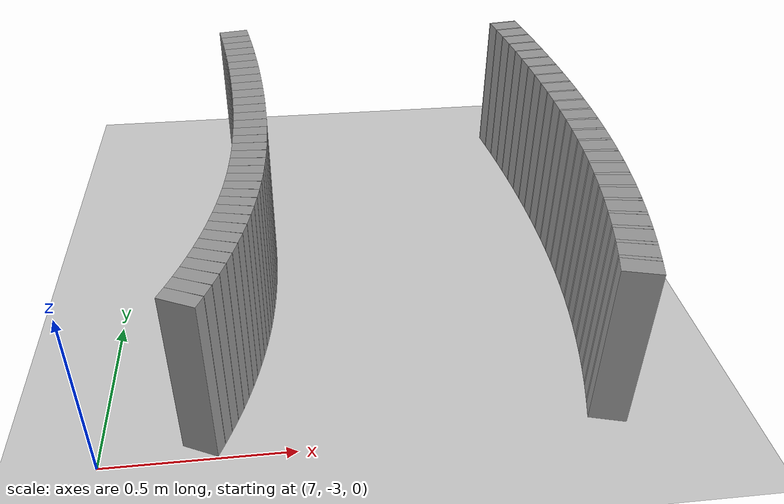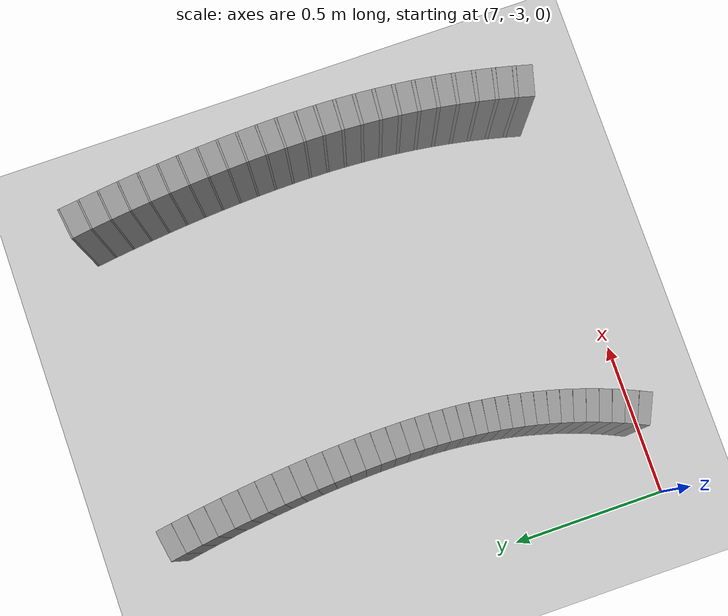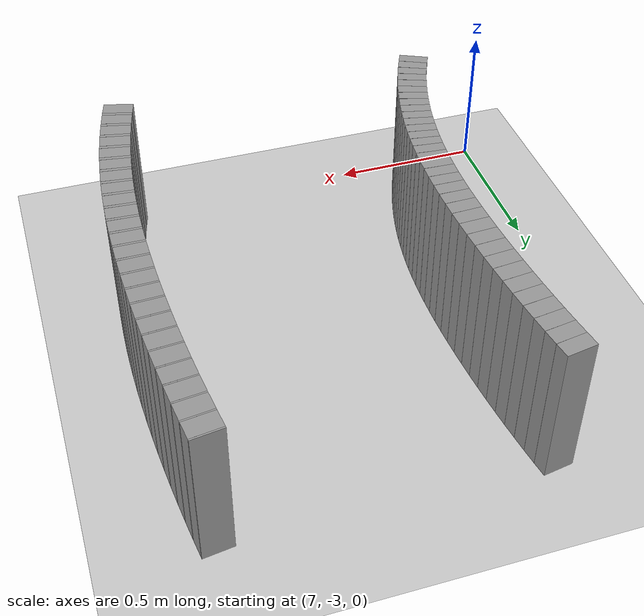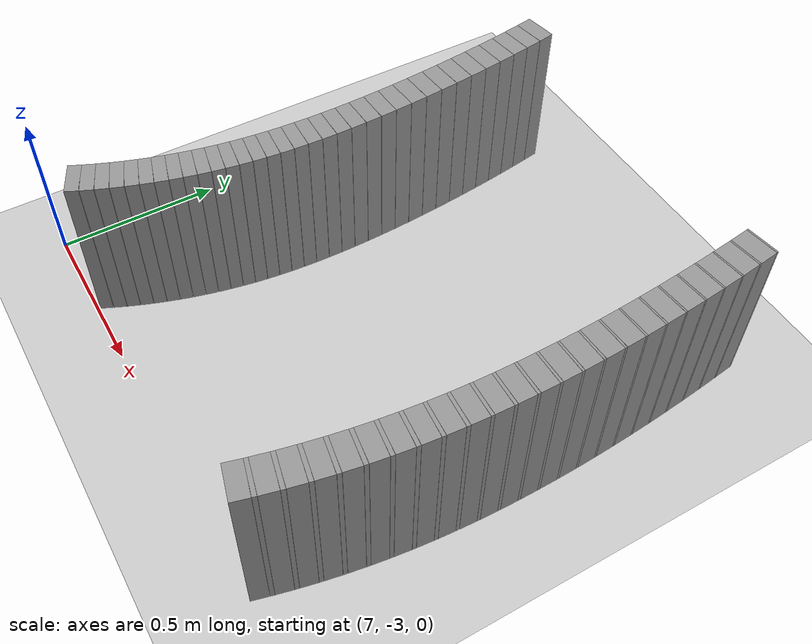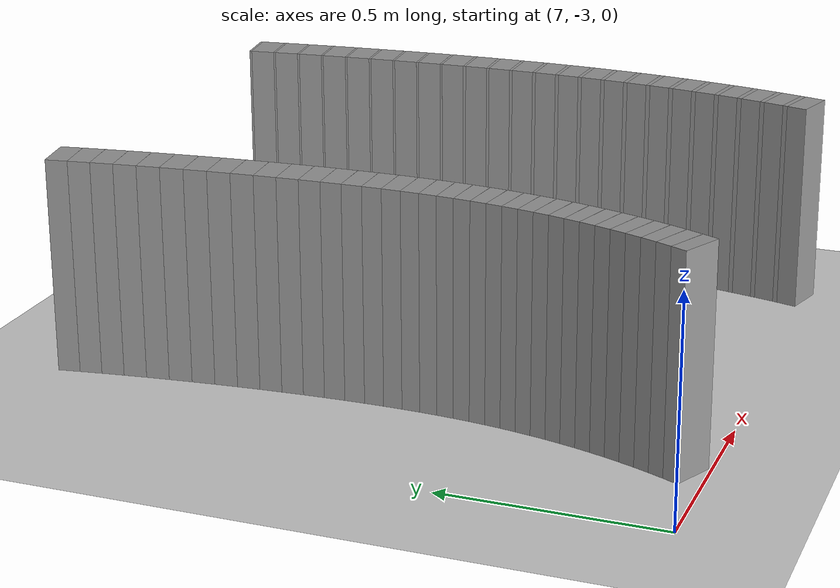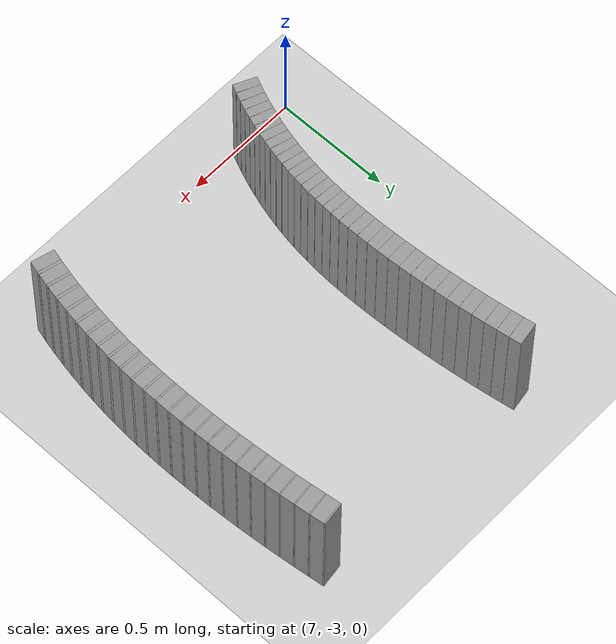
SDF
<sdf version="1.6">
 <world name="default">
  <include><uri>model://ground_plane</uri></include>
  <include><uri>model://sun</uri></include>
  <model name="wall_209_outward">
   <static>true</static>
   <link name="link">
    <collision name="collision">
     <geometry><box><size>0.005449050797295181 0.1 0.5</size></box></geometry>
    </collision>
    <visual name="visual">
     <geometry><box><size>0.005449050797295181 0.1 0.5</size></box></geometry>
     <material>
      <script><uri>file://media/materials/scripts/gazebo.material</uri><name>Gazebo/Gray</name></script>
     </material>
    </visual>
   </link>
   <pose>8.356295267532154 -1.4933980631512824 0.25 0 0 -1.4346434272176856</pose>
  </model>
  <model name="wall_210_outward">
   <static>true</static>
   <link name="link">
    <collision name="collision">
     <geometry><box><size>0.05969648829083896 0.1 0.5</size></box></geometry>
    </collision>
    <visual name="visual">
     <geometry><box><size>0.05969648829083896 0.1 0.5</size></box></geometry>
     <material>
      <script><uri>file://media/materials/scripts/gazebo.material</uri><name>Gazebo/Gray</name></script>
     </material>
    </visual>
   </link>
   <pose>8.360555255690137 -1.5256910252639861 0.25 0 0 -1.4400925049809228</pose>
  </model>
  <model name="wall_211_outward">
   <static>true</static>
   <link name="link">
    <collision name="collision">
     <geometry><box><size>0.005268267936116424 0.1 0.5</size></box></geometry>
    </collision>
    <visual name="visual">
     <geometry><box><size>0.005268267936116424 0.1 0.5</size></box></geometry>
     <material>
      <script><uri>file://media/materials/scripts/gazebo.material</uri><name>Gazebo/Gray</name></script>
     </material>
    </visual>
   </link>
   <pose>8.364774985058332 -1.5578981143867559 0.25 0 0 -1.4453607972871148</pose>
  </model>
  <model name="wall_212_outward">
   <static>true</static>
   <link name="link">
    <collision name="collision">
     <geometry><box><size>0.059987204851313584 0.1 0.5</size></box></geometry>
    </collision>
    <visual name="visual">
     <geometry><box><size>0.059987204851313584 0.1 0.5</size></box></geometry>
     <material>
      <script><uri>file://media/materials/scripts/gazebo.material</uri><name>Gazebo/Gray</name></script>
     </material>
    </visual>
   </link>
   <pose>8.36870011354382 -1.5902888592951228 0.25 0 0 -1.450629089593403</pose>
  </model>
  <model name="wall_213_outward">
   <static>true</static>
   <link name="link">
    <collision name="collision">
     <geometry><box><size>0.005175736394786067 0.1 0.5</size></box></geometry>
    </collision>
    <visual name="visual">
     <geometry><box><size>0.005175736394786067 0.1 0.5</size></box></geometry>
     <material>
      <script><uri>file://media/materials/scripts/gazebo.material</uri><name>Gazebo/Gray</name></script>
     </material>
    </visual>
   </link>
   <pose>8.372592621215148 -1.6226369432056935 0.25 0 0 -1.45580484909638</pose>
  </model>
  <model name="wall_214_outward">
   <static>true</static>
   <link name="link">
    <collision name="collision">
     <geometry><box><size>0.060082540826886036 0.1 0.5</size></box></geometry>
    </collision>
    <visual name="visual">
     <geometry><box><size>0.060082540826886036 0.1 0.5</size></box></geometry>
     <material>
      <script><uri>file://media/materials/scripts/gazebo.material</uri><name>Gazebo/Gray</name></script>
     </material>
    </visual>
   </link>
   <pose>8.376181925576748 -1.6550680316560733 0.25 0 0 -1.4609806085998491</pose>
  </model>
  <model name="wall_215_outward">
   <static>true</static>
   <link name="link">
    <collision name="collision">
     <geometry><box><size>0.005171357624720352 0.1 0.5</size></box></geometry>
    </collision>
    <visual name="visual">
     <geometry><box><size>0.005171357624720352 0.1 0.5</size></box></geometry>
     <material>
      <script><uri>file://media/materials/scripts/gazebo.material</uri><name>Gazebo/Gray</name></script>
     </material>
    </visual>
   </link>
   <pose>8.37974438563619 -1.687499877375686 0.25 0 0 -1.4661519892744215</pose>
  </model>
  <model name="wall_216_outward">
   <static>true</static>
   <link name="link">
    <collision name="collision">
     <geometry><box><size>0.059978801296767574 0.1 0.5</size></box></geometry>
    </collision>
    <visual name="visual">
     <geometry><box><size>0.059978801296767574 0.1 0.5</size></box></geometry>
     <material>
      <script><uri>file://media/materials/scripts/gazebo.material</uri><name>Gazebo/Gray</name></script>
     </material>
    </visual>
   </link>
   <pose>8.382992685899982 -1.719912564298086 0.25 0 0 -1.4713233699489314</pose>
  </model>
  <model name="wall_217_outward">
   <static>true</static>
   <link name="link">
    <collision name="collision">
     <geometry><box><size>0.005248916207795601 0.1 0.5</size></box></geometry>
    </collision>
    <visual name="visual">
     <geometry><box><size>0.005248916207795601 0.1 0.5</size></box></geometry>
     <material>
      <script><uri>file://media/materials/scripts/gazebo.material</uri><name>Gazebo/Gray</name></script>
     </material>
    </visual>
   </link>
   <pose>8.386217824306264 -1.7523665331851521 0.25 0 0 -1.476572310259183</pose>
  </model>
  <model name="wall_218_outward">
   <static>true</static>
   <link name="link">
    <collision name="collision">
     <geometry><box><size>0.05967842912516359 0.1 0.5</size></box></geometry>
    </collision>
    <visual name="visual">
     <geometry><box><size>0.05967842912516359 0.1 0.5</size></box></geometry>
     <material>
      <script><uri>file://media/materials/scripts/gazebo.material</uri><name>Gazebo/Gray</name></script>
     </material>
    </visual>
   </link>
   <pose>8.389116190310936 -1.7847005301528547 0.25 0 0 -1.4818212505696298</pose>
  </model>
  <model name="wall_219_outward">
   <static>true</static>
   <link name="link">
    <collision name="collision">
     <geometry><box><size>0.005402951101091135 0.1 0.5</size></box></geometry>
    </collision>
    <visual name="visual">
     <geometry><box><size>0.005402951101091135 0.1 0.5</size></box></geometry>
     <material>
      <script><uri>file://media/materials/scripts/gazebo.material</uri><name>Gazebo/Gray</name></script>
     </material>
    </visual>
   </link>
   <pose>8.39199314034697 -1.8171137576742964 0.25 0 0 -1.4872242279582404</pose>
  </model>
  <model name="wall_220_outward">
   <static>true</static>
   <link name="link">
    <collision name="collision">
     <geometry><box><size>0.059193566751130876 0.1 0.5</size></box></geometry>
    </collision>
    <visual name="visual">
     <geometry><box><size>0.059193566751130876 0.1 0.5</size></box></geometry>
     <material>
      <script><uri>file://media/materials/scripts/gazebo.material</uri><name>Gazebo/Gray</name></script>
     </material>
    </visual>
   </link>
   <pose>8.394529844760882 -1.8493122099091646 0.25 0 0 -1.4926272053466036</pose>
  </model>
  <model name="wall_221_outward">
   <static>true</static>
   <link name="link">
    <collision name="collision">
     <geometry><box><size>0.005629215003867746 0.1 0.5</size></box></geometry>
    </collision>
    <visual name="visual">
     <geometry><box><size>0.005629215003867746 0.1 0.5</size></box></geometry>
     <material>
      <script><uri>file://media/materials/scripts/gazebo.material</uri><name>Gazebo/Gray</name></script>
     </material>
    </visual>
   </link>
   <pose>8.39704503617531 -1.8816258205248313 0.25 0 0 -1.4982564500805515</pose>
  </model>
  <model name="wall_222_outward">
   <static>true</static>
   <link name="link">
    <collision name="collision">
     <geometry><box><size>0.058543384557668346 0.1 0.5</size></box></geometry>
    </collision>
    <visual name="visual">
     <geometry><box><size>0.058543384557668346 0.1 0.5</size></box></geometry>
     <material>
      <script><uri>file://media/materials/scripts/gazebo.material</uri><name>Gazebo/Gray</name></script>
     </material>
    </visual>
   </link>
   <pose>8.39920615475754 -1.9136392175540107 0.25 0 0 -1.503885694814824</pose>
  </model>
  <model name="wall_223_outward">
   <static>true</static>
   <link name="link">
    <collision name="collision">
     <geometry><box><size>0.005928237156133235 0.1 0.5</size></box></geometry>
    </collision>
    <visual name="visual">
     <geometry><box><size>0.005928237156133235 0.1 0.5</size></box></geometry>
     <material>
      <script><uri>file://media/materials/scripts/gazebo.material</uri><name>Gazebo/Gray</name></script>
     </material>
    </visual>
   </link>
   <pose>8.401343928002323 -1.9458040178466969 0.25 0 0 -1.5098139666953507</pose>
  </model>
  <model name="wall_224_outward">
   <static>true</static>
   <link name="link">
    <collision name="collision">
     <geometry><box><size>0.05775448614768202 0.1 0.5</size></box></geometry>
    </collision>
    <visual name="visual">
     <geometry><box><size>0.05775448614768202 0.1 0.5</size></box></geometry>
     <material>
      <script><uri>file://media/materials/scripts/gazebo.material</uri><name>Gazebo/Gray</name></script>
     </material>
    </visual>
   </link>
   <pose>8.403113582236617 -1.9775961179274044 0.25 0 0 -1.515742238575503</pose>
  </model>
  <model name="wall_225_outward">
   <static>true</static>
   <link name="link">
    <collision name="collision">
     <geometry><box><size>0.006292720675297555 0.1 0.5</size></box></geometry>
    </collision>
    <visual name="visual">
     <geometry><box><size>0.006292720675297555 0.1 0.5</size></box></geometry>
     <material>
      <script><uri>file://media/materials/scripts/gazebo.material</uri><name>Gazebo/Gray</name></script>
     </material>
    </visual>
   </link>
   <pose>8.404855949451612 -2.0095722298560785 0.25 0 0 -1.5220350007816141</pose>
  </model>
  <model name="wall_226_outward">
   <static>true</static>
   <link name="link">
    <collision name="collision">
     <geometry><box><size>0.056859598489205895 0.1 0.5</size></box></geometry>
    </collision>
    <visual name="visual">
     <geometry><box><size>0.056859598489205895 0.1 0.5</size></box></geometry>
     <material>
      <script><uri>file://media/materials/scripts/gazebo.material</uri><name>Gazebo/Gray</name></script>
     </material>
    </visual>
   </link>
   <pose>8.406216319207758 -2.041119015840848 0.25 0 0 -1.5283277629879954</pose>
  </model>
  <model name="wall_227_outward">
   <static>true</static>
   <link name="link">
    <collision name="collision">
     <geometry><box><size>0.006730936628260648 0.1 0.5</size></box></geometry>
    </collision>
    <visual name="visual">
     <geometry><box><size>0.006730936628260648 0.1 0.5</size></box></geometry>
     <material>
      <script><uri>file://media/materials/scripts/gazebo.material</uri><name>Gazebo/Gray</name></script>
     </material>
    </visual>
   </link>
   <pose>8.407543577132449 -2.0728865006432575 0.25 0 0 -1.535058750442185</pose>
  </model>
  <model name="wall_228_outward">
   <static>true</static>
   <link name="link">
    <collision name="collision">
     <geometry><box><size>0.05589460583400793 0.1 0.5</size></box></geometry>
    </collision>
    <visual name="visual">
     <geometry><box><size>0.05589460583400793 0.1 0.5</size></box></geometry>
     <material>
      <script><uri>file://media/materials/scripts/gazebo.material</uri><name>Gazebo/Gray</name></script>
     </material>
    </visual>
   </link>
   <pose>8.408474367465928 -2.104185366600926 0.25 0 0 -1.541789737896074</pose>
  </model>
  <model name="wall_229_outward">
   <static>true</static>
   <link name="link">
    <collision name="collision">
     <geometry><box><size>0.0072298556061161446 0.1 0.5</size></box></geometry>
    </collision>
    <visual name="visual">
     <geometry><box><size>0.0072298556061161446 0.1 0.5</size></box></geometry>
     <material>
      <script><uri>file://media/materials/scripts/gazebo.material</uri><name>Gazebo/Gray</name></script>
     </material>
    </visual>
   </link>
   <pose>8.409363624587876 -2.135734983855973 0.25 0 0 -1.5490196564886565</pose>
  </model>
  <model name="wall_230_outward">
   <static>true</static>
   <link name="link">
    <collision name="collision">
     <geometry><box><size>0.05489983331355707 0.1 0.5</size></box></geometry>
    </collision>
    <visual name="visual">
     <geometry><box><size>0.05489983331355707 0.1 0.5</size></box></geometry>
     <material>
      <script><uri>file://media/materials/scripts/gazebo.material</uri><name>Gazebo/Gray</name></script>
     </material>
    </visual>
   </link>
   <pose>8.409841632496622 -2.1667960669484927 0.25 0 0 -1.5562495750814263</pose>
  </model>
  <model name="wall_231_outward">
   <static>true</static>
   <link name="link">
    <collision name="collision">
     <geometry><box><size>0.00778363844855743 0.1 0.5</size></box></geometry>
    </collision>
    <visual name="visual">
     <geometry><box><size>0.00778363844855743 0.1 0.5</size></box></geometry>
     <material>
      <script><uri>file://media/materials/scripts/gazebo.material</uri><name>Gazebo/Gray</name></script>
     </material>
    </visual>
   </link>
   <pose>8.410267245843858 -2.1981348095670663 0.25 0 0 -1.564033292127645</pose>
  </model>
  <model name="wall_232_outward">
   <static>true</static>
   <link name="link">
    <collision name="collision">
     <geometry><box><size>0.0539125622664149 0.1 0.5</size></box></geometry>
    </collision>
    <visual name="visual">
     <geometry><box><size>0.0539125622664149 0.1 0.5</size></box></geometry>
     <material>
      <script><uri>file://media/materials/scripts/gazebo.material</uri><name>Gazebo/Gray</name></script>
     </material>
    </visual>
   </link>
   <pose>8.41026605235518 -2.2289828068802118 0.25 0 0 -1.571817009173477</pose>
  </model>
  <model name="wall_233_outward">
   <static>true</static>
   <link name="link">
    <collision name="collision">
     <geometry><box><size>0.00838290570877308 0.1 0.5</size></box></geometry>
    </collision>
    <visual name="visual">
     <geometry><box><size>0.00838290570877308 0.1 0.5</size></box></geometry>
     <material>
      <script><uri>file://media/materials/scripts/gazebo.material</uri><name>Gazebo/Gray</name></script>
     </material>
    </visual>
   </link>
   <pose>8.41019912403205 -2.260130341504093 0.25 0 0 -1.5802000130673193</pose>
  </model>
  <model name="wall_234_outward">
   <static>true</static>
   <link name="link">
    <collision name="collision">
     <geometry><box><size>0.05296947822698603 0.1 0.5</size></box></geometry>
    </collision>
    <visual name="visual">
     <geometry><box><size>0.05296947822698603 0.1 0.5</size></box></geometry>
     <material>
      <script><uri>file://media/materials/scripts/gazebo.material</uri><name>Gazebo/Gray</name></script>
     </material>
    </visual>
   </link>
   <pose>8.409688658494897 -2.2908021588200502 0.25 0 0 -1.588583016961513</pose>
  </model>
  <model name="wall_235_outward">
   <static>true</static>
   <link name="link">
    <collision name="collision">
     <geometry><box><size>0.009003957222030446 0.1 0.5</size></box></geometry>
    </collision>
    <visual name="visual">
     <geometry><box><size>0.009003957222030446 0.1 0.5</size></box></geometry>
     <material>
      <script><uri>file://media/materials/scripts/gazebo.material</uri><name>Gazebo/Gray</name></script>
     </material>
    </visual>
   </link>
   <pose>8.40909701044279 -2.321783071674547 0.25 0 0 -1.5975870958483496</pose>
  </model>
  <model name="wall_236_outward">
   <static>true</static>
   <link name="link">
    <collision name="collision">
     <geometry><box><size>0.05210207971636525 0.1 0.5</size></box></geometry>
    </collision>
    <visual name="visual">
     <geometry><box><size>0.05210207971636525 0.1 0.5</size></box></geometry>
     <material>
      <script><uri>file://media/materials/scripts/gazebo.material</uri><name>Gazebo/Gray</name></script>
     </material>
    </visual>
   </link>
   <pose>8.408044119507306 -2.3523177871624874 0.25 0 0 -1.6065911747351442</pose>
  </model>
  <model name="wall_237_outward">
   <static>true</static>
   <link name="link">
    <collision name="collision">
     <geometry><box><size>0.009613276460304469 0.1 0.5</size></box></geometry>
    </collision>
    <visual name="visual">
     <geometry><box><size>0.009613276460304469 0.1 0.5</size></box></geometry>
     <material>
      <script><uri>file://media/materials/scripts/gazebo.material</uri><name>Gazebo/Gray</name></script>
     </material>
    </visual>
   </link>
   <pose>8.406893639473207 -2.3831538232307317 0.25 0 0 -1.6162045992701648</pose>
  </model>
  <model name="wall_238_outward">
   <static>true</static>
   <link name="link">
    <collision name="collision">
     <geometry><box><size>0.05133779977523096 0.1 0.5</size></box></geometry>
    </collision>
    <visual name="visual">
     <geometry><box><size>0.05133779977523096 0.1 0.5</size></box></geometry>
     <material>
      <script><uri>file://media/materials/scripts/gazebo.material</uri><name>Gazebo/Gray</name></script>
     </material>
    </visual>
   </link>
   <pose>8.405263819412715 -2.4135855617219564 0.25 0 0 -1.6258180238053204</pose>
  </model>
  <model name="wall_239_outward">
   <static>true</static>
   <link name="link">
    <collision name="collision">
     <geometry><box><size>0.010192713697674783 0.1 0.5</size></box></geometry>
    </collision>
    <visual name="visual">
     <geometry><box><size>0.010192713697674783 0.1 0.5</size></box></geometry>
     <material>
      <script><uri>file://media/materials/scripts/gazebo.material</uri><name>Gazebo/Gray</name></script>
     </material>
    </visual>
   </link>
   <pose>8.403520064216703 -2.4443011399953596 0.25 0 0 -1.6360109140004657</pose>
  </model>
  <model name="wall_240_outward">
   <static>true</static>
   <link name="link">
    <collision name="collision">
     <geometry><box><size>0.050695430178558605 0.1 0.5</size></box></geometry>
    </collision>
    <visual name="visual">
     <geometry><box><size>0.050695430178558605 0.1 0.5</size></box></geometry>
     <material>
      <script><uri>file://media/materials/scripts/gazebo.material</uri><name>Gazebo/Gray</name></script>
     </material>
    </visual>
   </link>
   <pose>8.401278346641721 -2.4746623454612484 0.25 0 0 -1.646203804195631</pose>
  </model>
  <model name="wall_241_outward">
   <static>true</static>
   <link name="link">
    <collision name="collision">
     <geometry><box><size>0.010705368948541774 0.1 0.5</size></box></geometry>
    </collision>
    <visual name="visual">
     <geometry><box><size>0.010705368948541774 0.1 0.5</size></box></geometry>
     <material>
      <script><uri>file://media/materials/scripts/gazebo.material</uri><name>Gazebo/Gray</name></script>
     </material>
    </visual>
   </link>
   <pose>8.398908383816341 -2.5052708779271917 0.25 0 0 -1.6569093776360195</pose>
  </model>
  <model name="wall_242_outward">
   <static>true</static>
   <link name="link">
    <collision name="collision">
     <geometry><box><size>0.05018665782764219 0.1 0.5</size></box></geometry>
    </collision>
    <visual name="visual">
     <geometry><box><size>0.05018665782764219 0.1 0.5</size></box></geometry>
     <material>
      <script><uri>file://media/materials/scripts/gazebo.material</uri><name>Gazebo/Gray</name></script>
     </material>
    </visual>
   </link>
   <pose>8.396022309556386 -2.535579538616849 0.25 0 0 -1.6676149510764733</pose>
  </model>
  <model name="wall_243_outward">
   <static>true</static>
   <link name="link">
    <collision name="collision">
     <geometry><box><size>0.011144734018203371 0.1 0.5</size></box></geometry>
    </collision>
    <visual name="visual">
     <geometry><box><size>0.011144734018203371 0.1 0.5</size></box></geometry>
     <material>
      <script><uri>file://media/materials/scripts/gazebo.material</uri><name>Gazebo/Gray</name></script>
     </material>
    </visual>
   </link>
   <pose>8.392996157146793 -2.566095271280309 0.25 0 0 -1.6787599158129298</pose>
  </model>
  <model name="wall_244_outward">
   <static>true</static>
   <link name="link">
    <collision name="collision">
     <geometry><box><size>0.04981590781717723 0.1 0.5</size></box></geometry>
    </collision>
    <visual name="visual">
     <geometry><box><size>0.04981590781717723 0.1 0.5</size></box></geometry>
     <material>
      <script><uri>file://media/materials/scripts/gazebo.material</uri><name>Gazebo/Gray</name></script>
     </material>
    </visual>
   </link>
   <pose>8.389435971935528 -2.596366673705183 0.25 0 0 -1.689904880549592</pose>
  </model>
  <model name="wall_245_outward">
   <static>true</static>
   <link name="link">
    <collision name="collision">
     <geometry><box><size>0.01147300992041985 0.1 0.5</size></box></geometry>
    </collision>
    <visual name="visual">
     <geometry><box><size>0.01147300992041985 0.1 0.5</size></box></geometry>
     <material>
      <script><uri>file://media/materials/scripts/gazebo.material</uri><name>Gazebo/Gray</name></script>
     </material>
    </visual>
   </link>
   <pose>8.385729275200097 -2.6267858198168046 0.25 0 0 -1.7013781421835577</pose>
  </model>
  <model name="wall_246_outward">
   <static>true</static>
   <link name="link">
    <collision name="collision">
     <geometry><box><size>0.04958108754510561 0.1 0.5</size></box></geometry>
    </collision>
    <visual name="visual">
     <geometry><box><size>0.04958108754510561 0.1 0.5</size></box></geometry>
     <material>
      <script><uri>file://media/materials/scripts/gazebo.material</uri><name>Gazebo/Gray</name></script>
     </material>
    </visual>
   </link>
   <pose>8.381472528632454 -2.6570143178466004 0.25 0 0 -1.7128514038175182</pose>
  </model>
  <model name="wall_247_outward">
   <static>true</static>
   <link name="link">
    <collision name="collision">
     <geometry><box><size>0.011716731622698075 0.1 0.5</size></box></geometry>
    </collision>
    <visual name="visual">
     <geometry><box><size>0.011716731622698075 0.1 0.5</size></box></geometry>
     <material>
      <script><uri>file://media/materials/scripts/gazebo.material</uri><name>Gazebo/Gray</name></script>
     </material>
    </visual>
   </link>
   <pose>8.377065431232356 -2.687344388944166 0.25 0 0 -1.7245684035391387</pose>
  </model>
  <model name="wall_248_outward">
   <static>true</static>
   <link name="link">
    <collision name="collision">
     <geometry><box><size>0.04947345003223844 0.1 0.5</size></box></geometry>
    </collision>
    <visual name="visual">
     <geometry><box><size>0.04947345003223844 0.1 0.5</size></box></geometry>
     <material>
      <script><uri>file://media/materials/scripts/gazebo.material</uri><name>Gazebo/Gray</name></script>
     </material>
    </visual>
   </link>
   <pose>8.372093126104023 -2.7175323976451713 0.25 0 0 -1.7362854032607078</pose>
  </model>
  <model name="wall_249_outward">
   <static>true</static>
   <link name="link">
    <collision name="collision">
     <geometry><box><size>0.011862873487795968 0.1 0.5</size></box></geometry>
    </collision>
    <visual name="visual">
     <geometry><box><size>0.011862873487795968 0.1 0.5</size></box></geometry>
     <material>
      <script><uri>file://media/materials/scripts/gazebo.material</uri><name>Gazebo/Gray</name></script>
     </material>
    </visual>
   </link>
   <pose>8.366971680477018 -2.7477695650309535 0.25 0 0 -1.7481485550054838</pose>
  </model>
  <model name="wall_250_outward">
   <static>true</static>
   <link name="link">
    <collision name="collision">
     <geometry><box><size>0.04948076993326415 0.1 0.5</size></box></geometry>
    </collision>
    <visual name="visual">
     <geometry><box><size>0.04948076993326415 0.1 0.5</size></box></geometry>
     <material>
      <script><uri>file://media/materials/scripts/gazebo.material</uri><name>Gazebo/Gray</name></script>
     </material>
    </visual>
   </link>
   <pose>8.36127185508778 -2.7779067843055842 0.25 0 0 -1.7600117067500927</pose>
  </model>
  <model name="wall_251_outward">
   <static>true</static>
   <link name="link">
    <collision name="collision">
     <geometry><box><size>0.011954805662432937 0.1 0.5</size></box></geometry>
    </collision>
    <visual name="visual">
     <geometry><box><size>0.011954805662432937 0.1 0.5</size></box></geometry>
     <material>
      <script><uri>file://media/materials/scripts/gazebo.material</uri><name>Gazebo/Gray</name></script>
     </material>
    </visual>
   </link>
   <pose>8.355424094512976 -2.808062464493771 0.25 0 0 -1.7719667971891127</pose>
  </model>
  <model name="wall_252_outward">
   <static>true</static>
   <link name="link">
    <collision name="collision">
     <geometry><box><size>0.04958829086632143 0.1 0.5</size></box></geometry>
    </collision>
    <visual name="visual">
     <geometry><box><size>0.04958829086632143 0.1 0.5</size></box></geometry>
     <material>
      <script><uri>file://media/materials/scripts/gazebo.material</uri><name>Gazebo/Gray</name></script>
     </material>
    </visual>
   </link>
   <pose>8.34898535898995 -2.8381524908427522 0.25 0 0 -1.783921887628101</pose>
  </model>
  <model name="wall_253_outward">
   <static>true</static>
   <link name="link">
    <collision name="collision">
     <geometry><box><size>0.012004209126185513 0.1 0.5</size></box></geometry>
    </collision>
    <visual name="visual">
     <geometry><box><size>0.012004209126185513 0.1 0.5</size></box></geometry>
     <material>
      <script><uri>file://media/materials/scripts/gazebo.material</uri><name>Gazebo/Gray</name></script>
     </material>
    </visual>
   </link>
   <pose>8.342401137533688 -2.868236300378487 0.25 0 0 -1.795926385076232</pose>
  </model>
  <model name="wall_254_outward">
   <static>true</static>
   <link name="link">
    <collision name="collision">
     <geometry><box><size>0.049777779247975225 0.1 0.5</size></box></geometry>
    </collision>
    <visual name="visual">
     <geometry><box><size>0.049777779247975225 0.1 0.5</size></box></geometry>
     <material>
      <script><uri>file://media/materials/scripts/gazebo.material</uri><name>Gazebo/Gray</name></script>
     </material>
    </visual>
   </link>
   <pose>8.335214412260235 -2.8982793191066003 0.25 0 0 -1.8079308825241924</pose>
  </model>
  <model name="wall_255_outward">
   <static>true</static>
   <link name="link">
    <collision name="collision">
     <geometry><box><size>0.01205393371435697 0.1 0.5</size></box></geometry>
    </collision>
    <visual name="visual">
     <geometry><box><size>0.01205393371435697 0.1 0.5</size></box></geometry>
     <material>
      <script><uri>file://media/materials/scripts/gazebo.material</uri><name>Gazebo/Gray</name></script>
     </material>
    </visual>
   </link>
   <pose>8.327881197858925 -2.928312506624134 0.25 0 0 -1.819985108158337</pose>
  </model>
  <model name="wall_256_outward">
   <static>true</static>
   <link name="link">
    <collision name="collision">
     <geometry><box><size>0.05003364175202652 0.1 0.5</size></box></geometry>
    </collision>
    <visual name="visual">
     <geometry><box><size>0.05003364175202652 0.1 0.5</size></box></geometry>
     <material>
      <script><uri>file://media/materials/scripts/gazebo.material</uri><name>Gazebo/Gray</name></script>
     </material>
    </visual>
   </link>
   <pose>8.319933455996502 -2.9583213094665135 0.25 0 0 -1.8320393337924936</pose>
  </model>
  <model name="wall_145_inward">
   <static>true</static>
   <link name="link">
    <collision name="collision">
     <geometry><box><size>0.051428084190460056 0.1 0.5</size></box></geometry>
    </collision>
    <visual name="visual">
     <geometry><box><size>0.051428084190460056 0.1 0.5</size></box></geometry>
     <material>
      <script><uri>file://media/materials/scripts/gazebo.material</uri><name>Gazebo/Gray</name></script>
     </material>
    </visual>
   </link>
   <pose>7.3457215016081685 -1.4986378871367725 0.25 0 0 -1.405483807294335</pose>
  </model>
  <model name="wall_146_inward">
   <static>true</static>
   <link name="link">
    <collision name="collision">
     <geometry><box><size>0.052651733144434505 0.1 0.5</size></box></geometry>
    </collision>
    <visual name="visual">
     <geometry><box><size>0.052651733144434505 0.1 0.5</size></box></geometry>
     <material>
      <script><uri>file://media/materials/scripts/gazebo.material</uri><name>Gazebo/Gray</name></script>
     </material>
    </visual>
   </link>
   <pose>7.353967011923979 -1.5500194227424156 0.25 0 0 -1.4177259571521326</pose>
  </model>
  <model name="wall_147_inward">
   <static>true</static>
   <link name="link">
    <collision name="collision">
     <geometry><box><size>0.053629990651383845 0.1 0.5</size></box></geometry>
    </collision>
    <visual name="visual">
     <geometry><box><size>0.053629990651383845 0.1 0.5</size></box></geometry>
     <material>
      <script><uri>file://media/materials/scripts/gazebo.material</uri><name>Gazebo/Gray</name></script>
     </material>
    </visual>
   </link>
   <pose>7.361765383967864 -1.602584085313834 0.25 0 0 -1.429194349454256</pose>
  </model>
  <model name="wall_148_inward">
   <static>true</static>
   <link name="link">
    <collision name="collision">
     <geometry><box><size>0.05433775191932044 0.1 0.5</size></box></geometry>
    </collision>
    <visual name="visual">
     <geometry><box><size>0.05433775191932044 0.1 0.5</size></box></geometry>
     <material>
      <script><uri>file://media/materials/scripts/gazebo.material</uri><name>Gazebo/Gray</name></script>
     </material>
    </visual>
   </link>
   <pose>7.3690907375992385 -1.656067830753336 0.25 0 0 -1.440092504980916</pose>
  </model>
  <model name="wall_149_inward">
   <static>true</static>
   <link name="link">
    <collision name="collision">
     <geometry><box><size>0.05476513146735547 0.1 0.5</size></box></geometry>
    </collision>
    <visual name="visual">
     <geometry><box><size>0.05476513146735547 0.1 0.5</size></box></geometry>
     <material>
      <script><uri>file://media/materials/scripts/gazebo.material</uri><name>Gazebo/Gray</name></script>
     </material>
    </visual>
   </link>
   <pose>7.375914285150993 -1.7101900664514278 0.25 0 0 -1.4506290895934086</pose>
  </model>
  <model name="wall_150_inward">
   <static>true</static>
   <link name="link">
    <collision name="collision">
     <geometry><box><size>0.054908924579243824 0.1 0.5</size></box></geometry>
    </collision>
    <visual name="visual">
     <geometry><box><size>0.054908924579243824 0.1 0.5</size></box></geometry>
     <material>
      <script><uri>file://media/materials/scripts/gazebo.material</uri><name>Gazebo/Gray</name></script>
     </material>
    </visual>
   </link>
   <pose>7.382205734331796 -1.7646642507486097 0.25 0 0 -1.4609806085998396</pose>
  </model>
  <model name="wall_151_inward">
   <static>true</static>
   <link name="link">
    <collision name="collision">
     <geometry><box><size>0.0547685936512928 0.1 0.5</size></box></geometry>
    </collision>
    <visual name="visual">
     <geometry><box><size>0.0547685936512928 0.1 0.5</size></box></geometry>
     <material>
      <script><uri>file://media/materials/scripts/gazebo.material</uri><name>Gazebo/Gray</name></script>
     </material>
    </visual>
   </link>
   <pose>7.387934116654386 -1.8192022623885529 0.25 0 0 -1.4713233699489239</pose>
  </model>
  <model name="wall_152_inward">
   <static>true</static>
   <link name="link">
    <collision name="collision">
     <geometry><box><size>0.05435241988526279 0.1 0.5</size></box></geometry>
    </collision>
    <visual name="visual">
     <geometry><box><size>0.05435241988526279 0.1 0.5</size></box></geometry>
     <material>
      <script><uri>file://media/materials/scripts/gazebo.material</uri><name>Gazebo/Gray</name></script>
     </material>
    </visual>
   </link>
   <pose>7.393068439818508 -1.8735198986600747 0.25 0 0 -1.481821250569625</pose>
  </model>
  <model name="wall_153_inward">
   <static>true</static>
   <link name="link">
    <collision name="collision">
     <geometry><box><size>0.05367739967128152 0.1 0.5</size></box></geometry>
    </collision>
    <visual name="visual">
     <geometry><box><size>0.05367739967128152 0.1 0.5</size></box></geometry>
     <material>
      <script><uri>file://media/materials/scripts/gazebo.material</uri><name>Gazebo/Gray</name></script>
     </material>
    </visual>
   </link>
   <pose>7.397579077725435 -1.927345352274662 0.25 0 0 -1.492627205346606</pose>
  </model>
  <model name="wall_154_inward">
   <static>true</static>
   <link name="link">
    <collision name="collision">
     <geometry><box><size>0.05276456179512279 0.1 0.5</size></box></geometry>
    </collision>
    <visual name="visual">
     <geometry><box><size>0.05276456179512279 0.1 0.5</size></box></geometry>
     <material>
      <script><uri>file://media/materials/scripts/gazebo.material</uri><name>Gazebo/Gray</name></script>
     </material>
    </visual>
   </link>
   <pose>7.401438837599663 -1.9804253418653377 0.25 0 0 -1.5038856948148196</pose>
  </model>
  <model name="wall_155_inward">
   <static>true</static>
   <link name="link">
    <collision name="collision"><geometry><box><size>0.051643892847928 0.1 0.5</size></box></geometry></collision>
    <visual name="visual">
     <geometry><box><size>0.051643892847928 0.1 0.5</size></box></geometry>
     <material>
      <script><uri>file://media/materials/scripts/gazebo.material</uri><name>Gazebo/Gray</name></script>
     </material>
    </visual>
   </link>
   <pose>7.404623661487959 -2.0325314113850785 0.25 0 0 -1.5157422385755077</pose>
  </model>
  <model name="wall_156_inward">
   <static>true</static>
   <link name="link">
    <collision name="collision">
     <geometry><box><size>0.05034763130054982 0.1 0.5</size></box></geometry>
    </collision>
    <visual name="visual">
     <geometry><box><size>0.05034763130054982 0.1 0.5</size></box></geometry>
     <material>
      <script><uri>file://media/materials/scripts/gazebo.material</uri><name>Gazebo/Gray</name></script>
     </material>
    </visual>
   </link>
   <pose>7.4071133216363645 -2.083465352724455 0.25 0 0 -1.5283277629879912</pose>
  </model>
  <model name="wall_157_inward">
   <static>true</static>
   <link name="link">
    <collision name="collision">
     <geometry><box><size>0.04891403899579885 0.1 0.5</size></box></geometry>
    </collision>
    <visual name="visual">
     <geometry><box><size>0.04891403899579885 0.1 0.5</size></box></geometry>
     <material>
      <script><uri>file://media/materials/scripts/gazebo.material</uri><name>Gazebo/Gray</name></script>
     </material>
    </visual>
   </link>
   <pose>7.408891411328077 -2.133063201673853 0.25 0 0 -1.5417897378960987</pose>
  </model>
  <model name="wall_158_inward">
   <static>true</static>
   <link name="link">
    <collision name="collision">
     <geometry><box><size>0.047392873906537715 0.1 0.5</size></box></geometry>
    </collision>
    <visual name="visual">
     <geometry><box><size>0.047392873906537715 0.1 0.5</size></box></geometry>
     <material>
      <script><uri>file://media/materials/scripts/gazebo.material</uri><name>Gazebo/Gray</name></script>
     </material>
    </visual>
   </link>
   <pose>7.409945420588928 -2.181203862862545 0.25 0 0 -1.556249575081417</pose>
  </model>
  <model name="wall_159_inward">
   <static>true</static>
   <link name="link">
    <collision name="collision">
     <geometry><box><size>0.045829025008468555 0.1 0.5</size></box></geometry>
    </collision>
    <visual name="visual">
     <geometry><box><size>0.045829025008468555 0.1 0.5</size></box></geometry>
     <material>
      <script><uri>file://media/materials/scripts/gazebo.material</uri><name>Gazebo/Gray</name></script>
     </material>
    </visual>
   </link>
   <pose>7.410266726181747 -2.2278122932505338 0.25 0 0 -1.5718170091734835</pose>
  </model>
  <model name="wall_160_inward">
   <static>true</static>
   <link name="link">
    <collision name="collision">
     <geometry><box><size>0.04427571697900507 0.1 0.5</size></box></geometry>
    </collision>
    <visual name="visual">
     <geometry><box><size>0.04427571697900507 0.1 0.5</size></box></geometry>
     <material>
      <script><uri>file://media/materials/scripts/gazebo.material</uri><name>Gazebo/Gray</name></script>
     </material>
    </visual>
   </link>
   <pose>7.409849599278475 -2.2728611505637977 0.25 0 0 -1.5885830169615205</pose>
  </model>
  <model name="wall_161_inward">
   <static>true</static>
   <link name="link">
    <collision name="collision">
     <geometry><box><size>0.04279305825521991 0.1 0.5</size></box></geometry>
    </collision>
    <visual name="visual">
     <geometry><box><size>0.04279305825521991 0.1 0.5</size></box></geometry>
     <material>
      <script><uri>file://media/materials/scripts/gazebo.material</uri><name>Gazebo/Gray</name></script>
     </material>
    </visual>
   </link>
   <pose>7.408690138844387 -2.3163783305224057 0.25 0 0 -1.606591174735128</pose>
  </model>
  <model name="wall_162_inward">
   <static>true</static>
   <link name="link">
    <collision name="collision">
     <geometry><box><size>0.041434317823446185 0.1 0.5</size></box></geometry>
    </collision>
    <visual name="visual">
     <geometry><box><size>0.041434317823446185 0.1 0.5</size></box></geometry>
     <material>
      <script><uri>file://media/materials/scripts/gazebo.material</uri><name>Gazebo/Gray</name></script>
     </material>
    </visual>
   </link>
   <pose>7.406785098700583 -2.3584469611280015 0.25 0 0 -1.6258180238053042</pose>
  </model>
  <model name="wall_163_inward">
   <static>true</static>
   <link name="link">
    <collision name="collision">
     <geometry><box><size>0.04024581735262474 0.1 0.5</size></box></geometry>
    </collision>
    <visual name="visual">
     <geometry><box><size>0.04024581735262474 0.1 0.5</size></box></geometry>
     <material>
      <script><uri>file://media/materials/scripts/gazebo.material</uri><name>Gazebo/Gray</name></script>
     </material>
    </visual>
   </link>
   <pose>7.404129800411602 -2.3991984919782294 0.25 0 0 -1.6462038041956215</pose>
  </model>
  <model name="wall_164_inward">
   <static>true</static>
   <link name="link">
    <collision name="collision">
     <geometry><box><size>0.039260953505436166 0.1 0.5</size></box></geometry>
    </collision>
    <visual name="visual">
     <geometry><box><size>0.039260953505436166 0.1 0.5</size></box></geometry>
     <material>
      <script><uri>file://media/materials/scripts/gazebo.material</uri><name>Gazebo/Gray</name></script>
     </material>
    </visual>
   </link>
   <pose>7.400716192471288 -2.438802757504809 0.25 0 0 -1.667614951076468</pose>
  </model>
  <model name="wall_165_inward">
   <static>true</static>
   <link name="link">
    <collision name="collision">
     <geometry><box><size>0.03850631217222192 0.1 0.5</size></box></geometry>
    </collision>
    <visual name="visual">
     <geometry><box><size>0.03850631217222192 0.1 0.5</size></box></geometry>
     <material>
      <script><uri>file://media/materials/scripts/gazebo.material</uri><name>Gazebo/Gray</name></script>
     </material>
    </visual>
   </link>
   <pose>7.396530767470444 -2.4774580462467357 0.25 0 0 -1.6899048805495946</pose>
  </model>
  <model name="wall_166_inward">
   <static>true</static>
   <link name="link">
    <collision name="collision">
     <geometry><box><size>0.03798543702338508 0.1 0.5</size></box></geometry>
    </collision>
    <visual name="visual">
     <geometry><box><size>0.03798543702338508 0.1 0.5</size></box></geometry>
     <material>
      <script><uri>file://media/materials/scripts/gazebo.material</uri><name>Gazebo/Gray</name></script>
     </material>
    </visual>
   </link>
   <pose>7.391554023210871 -2.515376200314935 0.25 0 0 -1.7128514038175167</pose>
  </model>
  <model name="wall_167_inward">
   <static>true</static>
   <link name="link">
    <collision name="collision">
     <geometry><box><size>0.037682827909163163 0.1 0.5</size></box></geometry>
    </collision>
    <visual name="visual">
     <geometry><box><size>0.037682827909163163 0.1 0.5</size></box></geometry>
     <material>
      <script><uri>file://media/materials/scripts/gazebo.material</uri><name>Gazebo/Gray</name></script>
     </material>
    </visual>
   </link>
   <pose>7.38576124059342 -2.5527616084848948 0.25 0 0 -1.7362854032607147</pose>
  </model>
  <model name="wall_168_inward">
   <static>true</static>
   <link name="link">
    <collision name="collision">
     <geometry><box><size>0.03757108577193814 0.1 0.5</size></box></geometry>
    </collision>
    <visual name="visual">
     <geometry><box><size>0.03757108577193814 0.1 0.5</size></box></geometry>
     <material>
      <script><uri>file://media/materials/scripts/gazebo.material</uri><name>Gazebo/Gray</name></script>
     </material>
    </visual>
   </link>
   <pose>7.379124063548241 -2.5897958699426757 0.25 0 0 -1.7600117067501082</pose>
  </model>
  <model name="wall_169_inward">
   <static>true</static>
   <link name="link">
    <collision name="collision">
     <geometry><box><size>0.03760792378740252 0.1 0.5</size></box></geometry>
    </collision>
    <visual name="visual">
     <geometry><box><size>0.03760792378740252 0.1 0.5</size></box></geometry>
     <material>
      <script><uri>file://media/materials/scripts/gazebo.material</uri><name>Gazebo/Gray</name></script>
     </material>
    </visual>
   </link>
   <pose>7.37161338752054 -2.6266246450668067 0.25 0 0 -1.7839218876280971</pose>
  </model>
  <model name="wall_170_inward">
   <static>true</static>
   <link name="link">
    <collision name="collision">
     <geometry><box><size>0.03774783742742631 0.1 0.5</size></box></geometry>
    </collision>
    <visual name="visual">
     <geometry><box><size>0.03774783742742631 0.1 0.5</size></box></geometry>
     <material>
      <script><uri>file://media/materials/scripts/gazebo.material</uri><name>Gazebo/Gray</name></script>
     </material>
    </visual>
   </link>
   <pose>7.3632022233636985 -2.663348893679916 0.25 0 0 -1.807930882524206</pose>
  </model>
  <model name="wall_171_inward">
   <static>true</static>
   <link name="link">
    <collision name="collision">
     <geometry><box><size>0.03794709281528848 0.1 0.5</size></box></geometry>
    </collision>
    <visual name="visual">
     <geometry><box><size>0.03794709281528848 0.1 0.5</size></box></geometry>
     <material>
      <script><uri>file://media/materials/scripts/gazebo.material</uri><name>Gazebo/Gray</name></script>
     </material>
    </visual>
   </link>
   <pose>7.35386787612733 -2.7000243957337218 0.25 0 0 -1.832039333792472</pose>
  </model>
  <model name="wall_172_inward">
   <static>true</static>
   <link name="link">
    <collision name="collision">
     <geometry><box><size>0.038173699186445295 0.1 0.5</size></box></geometry>
    </collision>
    <visual name="visual">
     <geometry><box><size>0.038173699186445295 0.1 0.5</size></box></geometry>
     <material>
      <script><uri>file://media/materials/scripts/gazebo.material</uri><name>Gazebo/Gray</name></script>
     </material>
    </visual>
   </link>
   <pose>7.343592186399193 -2.7366685118680145 0.25 0 0 -1.8562747242161923</pose>
  </model>
  <model name="wall_173_inward">
   <static>true</static>
   <link name="link">
    <collision name="collision">
     <geometry><box><size>0.03839528511727704 0.1 0.5</size></box></geometry>
    </collision>
    <visual name="visual">
     <geometry><box><size>0.03839528511727704 0.1 0.5</size></box></geometry>
     <material>
      <script><uri>file://media/materials/scripts/gazebo.material</uri><name>Gazebo/Gray</name></script>
     </material>
    </visual>
   </link>
   <pose>7.332362247895098 -2.7732659449415653 0.25 0 0 -1.8807066090052182</pose>
  </model>
  <model name="wall_174_inward">
   <static>true</static>
   <link name="link">
    <collision name="collision">
     <geometry><box><size>0.038601927171491086 0.1 0.5</size></box></geometry>
    </collision>
    <visual name="visual">
     <geometry><box><size>0.038601927171491086 0.1 0.5</size></box></geometry>
     <material>
      <script><uri>file://media/materials/scripts/gazebo.material</uri><name>Gazebo/Gray</name></script>
     </material>
    </visual>
   </link>
   <pose>7.320168546188137 -2.809779364211491 0.25 0 0 -1.9054328197328232</pose>
  </model>
  <model name="wall_175_inward">
   <static>true</static>
   <link name="link">
    <collision name="collision">
     <geometry><box><size>0.038782197445489296 0.1 0.5</size></box></geometry>
    </collision>
    <visual name="visual">
     <geometry><box><size>0.038782197445489296 0.1 0.5</size></box></geometry>
     <material>
      <script><uri>file://media/materials/scripts/gazebo.material</uri><name>Gazebo/Gray</name></script>
     </material>
    </visual>
   </link>
   <pose>7.307003604381609 -2.846159639304055 0.25 0 0 -1.930522043545172</pose>
  </model>
  <model name="wall_176_inward">
   <static>true</static>
   <link name="link">
    <collision name="collision">
     <geometry><box><size>0.038937070367136895 0.1 0.5</size></box></geometry>
    </collision>
    <visual name="visual">
     <geometry><box><size>0.038937070367136895 0.1 0.5</size></box></geometry>
     <material>
      <script><uri>file://media/materials/scripts/gazebo.material</uri><name>Gazebo/Gray</name></script>
     </material>
    </visual>
   </link>
   <pose>7.292861089392828 -2.8823509924551605 0.25 0 0 -1.9560691425869468</pose>
  </model>
  <model name="wall_177_inward">
   <static>true</static>
   <link name="link">
    <collision name="collision"><geometry><box><size>0.039073947365241 0.1 0.5</size></box></geometry></collision>
    <visual name="visual">
     <geometry><box><size>0.039073947365241 0.1 0.5</size></box></geometry>
     <material>
      <script><uri>file://media/materials/scripts/gazebo.material</uri><name>Gazebo/Gray</name></script>
     </material>
    </visual>
   </link>
   <pose>7.277733612892824 -2.918300004463919 0.25 0 0 -1.9820997621992822</pose>
  </model>
  <model name="wall_178_inward">
   <static>true</static>
   <link name="link">
    <collision name="collision">
     <geometry><box><size>0.039190185112907575 0.1 0.5</size></box></geometry>
    </collision>
    <visual name="visual">
     <geometry><box><size>0.039190185112907575 0.1 0.5</size></box></geometry>
     <material>
      <script><uri>file://media/materials/scripts/gazebo.material</uri><name>Gazebo/Gray</name></script>
     </material>
    </visual>
   </link>
   <pose>7.261614680890425 -2.9539543046751673 0.25 0 0 -2.008633745987636</pose>
  </model>
 </world>
</sdf>
